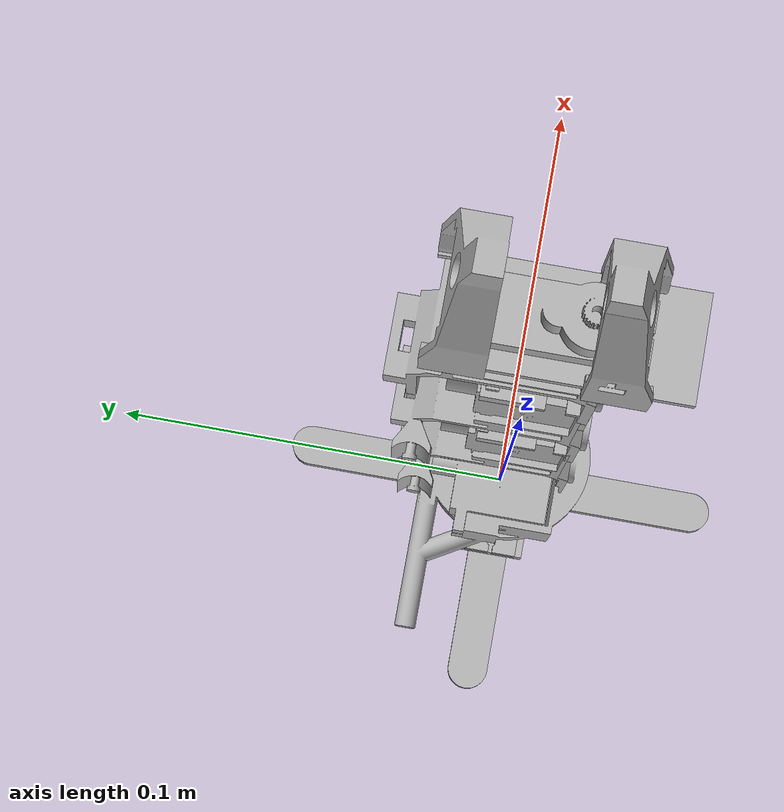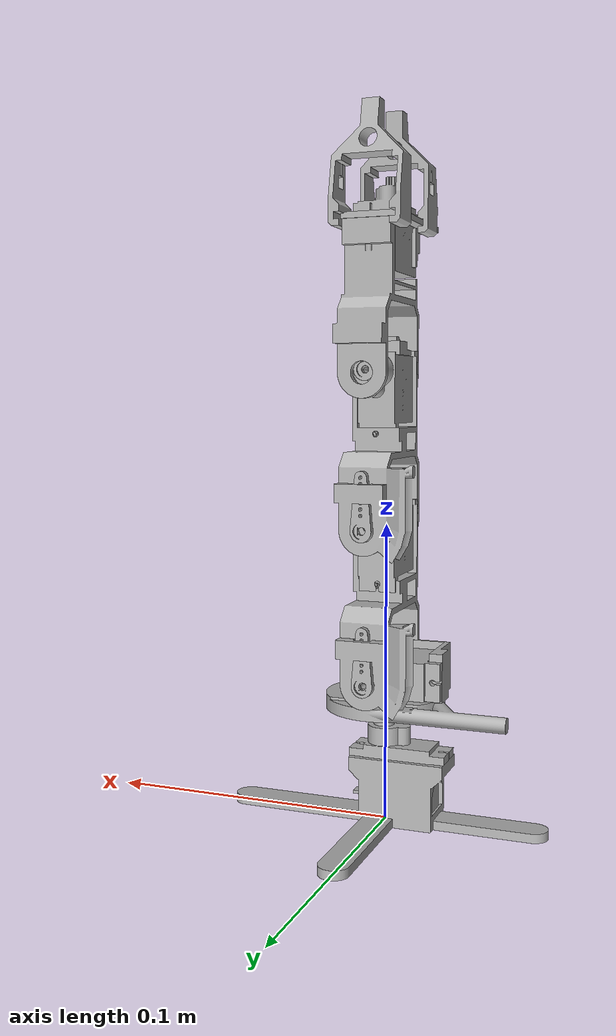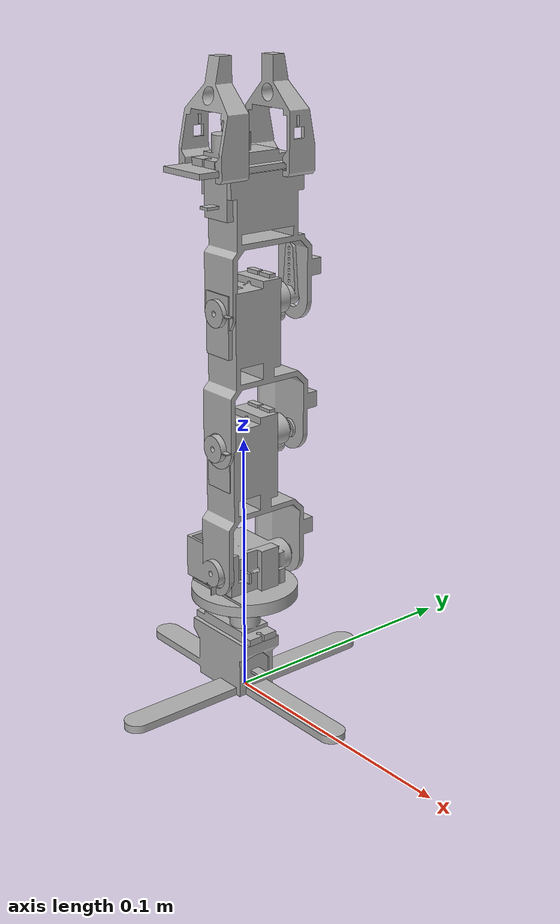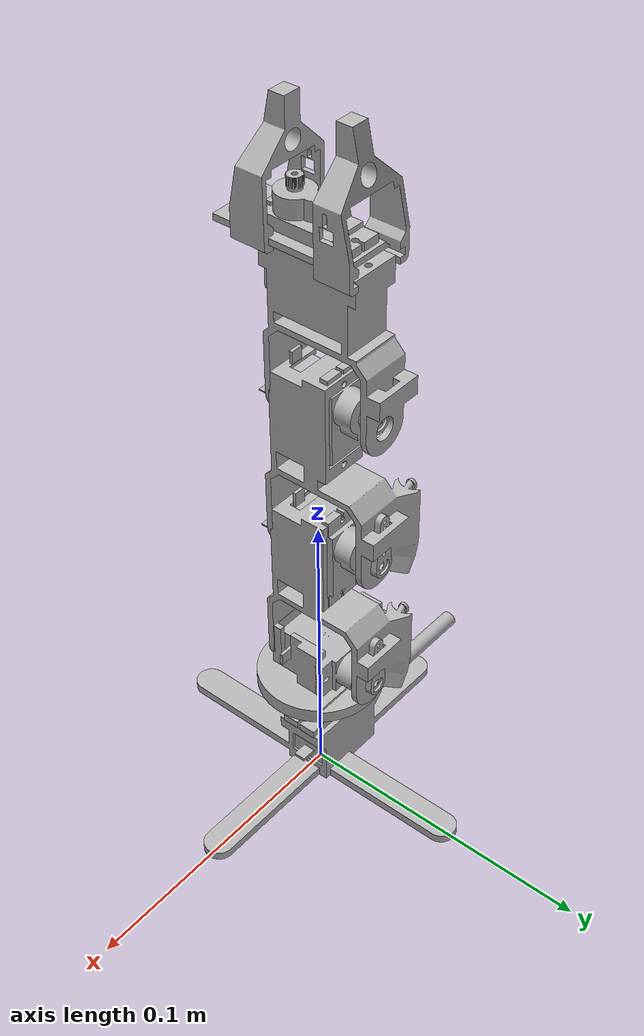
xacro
<?xml version="1.0" ?>
<robot name="Arm_assembly" xmlns:xacro="http://www.ros.org/wiki/xacro">

<xacro:include filename="$(find Arm_assembly_description)/urdf/materials.xacro" />
<xacro:include filename="$(find Arm_assembly_description)/urdf/Arm_assembly.trans" />
<xacro:include filename="$(find Arm_assembly_description)/urdf/Arm_assembly.gazebo" />
<link name="base_link">
  <inertial>
    <origin xyz="-0.001790888956705833 5.198855970783829e-16 0.005081280353570841" rpy="0 0 0"/>
    <mass value="0.06973734855496082"/>
    <inertia ixx="2.9e-05" iyy="3e-05" izz="5.3e-05" ixy="-0.0" iyz="0.0" ixz="1e-06"/>
  </inertial>
  <visual>
    <origin xyz="0 0 0" rpy="0 0 0"/>
    <geometry>
      <mesh filename="file://$(find Arm_assembly_description)/meshes/base_link.stl" scale="0.001 0.001 0.001"/>
    </geometry>
    <material name="silver"/>
  </visual>
  <collision>
    <origin xyz="0 0 0" rpy="0 0 0"/>
    <geometry>
      <mesh filename="file://$(find Arm_assembly_description)/meshes/base_link.stl" scale="0.001 0.001 0.001"/>
    </geometry>
  </collision>
</link>

<link name="base_servo_1">
  <inertial>
    <origin xyz="0.0005325333942827297 1.0134938784049858e-09 0.013073098013751137" rpy="0 0 0"/>
    <mass value="0.058927222786581274"/>
    <inertia ixx="4e-06" iyy="6e-06" izz="4e-06" ixy="0.0" iyz="0.0" ixz="-0.0"/>
  </inertial>
  <visual>
    <origin xyz="0.005 -0.0 -0.003" rpy="0 0 0"/>
    <geometry>
      <mesh filename="file://$(find Arm_assembly_description)/meshes/base_servo_1.stl" scale="0.001 0.001 0.001"/>
    </geometry>
    <material name="silver"/>
  </visual>
  <collision>
    <origin xyz="0.005 -0.0 -0.003" rpy="0 0 0"/>
    <geometry>
      <mesh filename="file://$(find Arm_assembly_description)/meshes/base_servo_1.stl" scale="0.001 0.001 0.001"/>
    </geometry>
  </collision>
</link>

<link name="base_servo_arm_1">
  <inertial>
    <origin xyz="-0.005370321565967373 -1.2826019699753999e-19 0.0003436233249314788" rpy="0 0 0"/>
    <mass value="0.0021102335304111334"/>
    <inertia ixx="0.0" iyy="0.0" izz="0.0" ixy="0.0" iyz="0.0" ixz="0.0"/>
  </inertial>
  <visual>
    <origin xyz="-0.0006 0.0 -0.0355" rpy="0 0 0"/>
    <geometry>
      <mesh filename="file://$(find Arm_assembly_description)/meshes/base_servo_arm_1.stl" scale="0.001 0.001 0.001"/>
    </geometry>
    <material name="silver"/>
  </visual>
  <collision>
    <origin xyz="-0.0006 0.0 -0.0355" rpy="0 0 0"/>
    <geometry>
      <mesh filename="file://$(find Arm_assembly_description)/meshes/base_servo_arm_1.stl" scale="0.001 0.001 0.001"/>
    </geometry>
  </collision>
</link>

<link name="shoulder_link_1">
  <inertial>
    <origin xyz="-0.00412903909068397 0.00047776752185587967 0.005115994825837619" rpy="0 0 0"/>
    <mass value="0.07735657442485215"/>
    <inertia ixx="1e-05" iyy="1.5e-05" izz="2e-05" ixy="3e-06" iyz="1e-06" ixz="0.0"/>
  </inertial>
  <visual>
    <origin xyz="-0.0006 0.0 -0.0375" rpy="0 0 0"/>
    <geometry>
      <mesh filename="file://$(find Arm_assembly_description)/meshes/shoulder_link_1.stl" scale="0.001 0.001 0.001"/>
    </geometry>
    <material name="silver"/>
  </visual>
  <collision>
    <origin xyz="-0.0006 0.0 -0.0375" rpy="0 0 0"/>
    <geometry>
      <mesh filename="file://$(find Arm_assembly_description)/meshes/shoulder_link_1.stl" scale="0.001 0.001 0.001"/>
    </geometry>
  </collision>
</link>

<link name="shoulder_servo_1">
  <inertial>
    <origin xyz="-0.013367737946485261 -0.005326901986248829 2.0203652503075764e-07" rpy="0 0 0"/>
    <mass value="0.058927222786581274"/>
    <inertia ixx="4e-06" iyy="4e-06" izz="6e-06" ixy="-0.0" iyz="-0.0" ixz="-0.0"/>
  </inertial>
  <visual>
    <origin xyz="-0.008842 -0.0077 -0.0504" rpy="0 0 0"/>
    <geometry>
      <mesh filename="file://$(find Arm_assembly_description)/meshes/shoulder_servo_1.stl" scale="0.001 0.001 0.001"/>
    </geometry>
    <material name="silver"/>
  </visual>
  <collision>
    <origin xyz="-0.008842 -0.0077 -0.0504" rpy="0 0 0"/>
    <geometry>
      <mesh filename="file://$(find Arm_assembly_description)/meshes/shoulder_servo_1.stl" scale="0.001 0.001 0.001"/>
    </geometry>
  </collision>
</link>

<link name="shoulder_servo_arm_1">
  <inertial>
    <origin xyz="-2.7134076790850427e-07 0.00034362332493148573 0.005370524615986326" rpy="0 0 0"/>
    <mass value="0.0021102335304111334"/>
    <inertia ixx="0.0" iyy="0.0" izz="0.0" ixy="-0.0" iyz="-0.0" ixz="-0.0"/>
  </inertial>
  <visual>
    <origin xyz="-0.000542 -0.0218 -0.0504" rpy="0 0 0"/>
    <geometry>
      <mesh filename="file://$(find Arm_assembly_description)/meshes/shoulder_servo_arm_1.stl" scale="0.001 0.001 0.001"/>
    </geometry>
    <material name="silver"/>
  </visual>
  <collision>
    <origin xyz="-0.000542 -0.0218 -0.0504" rpy="0 0 0"/>
    <geometry>
      <mesh filename="file://$(find Arm_assembly_description)/meshes/shoulder_servo_arm_1.stl" scale="0.001 0.001 0.001"/>
    </geometry>
  </collision>
</link>

<link name="elbow_link_1">
  <inertial>
    <origin xyz="-0.00048514956089843435 -0.01768411874308059 0.026853686221967182" rpy="0 0 0"/>
    <mass value="0.05763992635022461"/>
    <inertia ixx="2.8e-05" iyy="2.1e-05" izz="1.2e-05" ixy="1e-06" iyz="6e-06" ixz="-2e-06"/>
  </inertial>
  <visual>
    <origin xyz="-0.000542 -0.0218 -0.0504" rpy="0 0 0"/>
    <geometry>
      <mesh filename="file://$(find Arm_assembly_description)/meshes/elbow_link_1.stl" scale="0.001 0.001 0.001"/>
    </geometry>
    <material name="silver"/>
  </visual>
  <collision>
    <origin xyz="-0.000542 -0.0218 -0.0504" rpy="0 0 0"/>
    <geometry>
      <mesh filename="file://$(find Arm_assembly_description)/meshes/elbow_link_1.stl" scale="0.001 0.001 0.001"/>
    </geometry>
  </collision>
</link>

<link name="elbow_servo_1">
  <inertial>
    <origin xyz="-2.703272740334174e-07 -0.005326901986248858 0.014432736444301736" rpy="0 0 0"/>
    <mass value="0.058927222786581274"/>
    <inertia ixx="6e-06" iyy="4e-06" izz="4e-06" ixy="0.0" iyz="-0.0" ixz="0.0"/>
  </inertial>
  <visual>
    <origin xyz="-0.000542 -0.009 -0.08065" rpy="0 0 0"/>
    <geometry>
      <mesh filename="file://$(find Arm_assembly_description)/meshes/elbow_servo_1.stl" scale="0.001 0.001 0.001"/>
    </geometry>
    <material name="silver"/>
  </visual>
  <collision>
    <origin xyz="-0.000542 -0.009 -0.08065" rpy="0 0 0"/>
    <geometry>
      <mesh filename="file://$(find Arm_assembly_description)/meshes/elbow_servo_1.stl" scale="0.001 0.001 0.001"/>
    </geometry>
  </collision>
</link>

<link name="elbow_servo_arm_1">
  <inertial>
    <origin xyz="-2.7134076790948005e-07 0.000343623324931399 0.0053705246159864994" rpy="0 0 0"/>
    <mass value="0.0021102335304111334"/>
    <inertia ixx="0.0" iyy="0.0" izz="0.0" ixy="0.0" iyz="-0.0" ixz="0.0"/>
  </inertial>
  <visual>
    <origin xyz="-0.000542 -0.0231 -0.10015" rpy="0 0 0"/>
    <geometry>
      <mesh filename="file://$(find Arm_assembly_description)/meshes/elbow_servo_arm_1.stl" scale="0.001 0.001 0.001"/>
    </geometry>
    <material name="silver"/>
  </visual>
  <collision>
    <origin xyz="-0.000542 -0.0231 -0.10015" rpy="0 0 0"/>
    <geometry>
      <mesh filename="file://$(find Arm_assembly_description)/meshes/elbow_servo_arm_1.stl" scale="0.001 0.001 0.001"/>
    </geometry>
  </collision>
</link>

<link name="wrist_link_1">
  <inertial>
    <origin xyz="-0.00048524840858917695 -0.017684300359948266 0.026853838982131242" rpy="0 0 0"/>
    <mass value="0.05762817822028318"/>
    <inertia ixx="2.8e-05" iyy="2.1e-05" izz="1.2e-05" ixy="1e-06" iyz="6e-06" ixz="-2e-06"/>
  </inertial>
  <visual>
    <origin xyz="-0.000542 -0.0231 -0.10015" rpy="0 0 0"/>
    <geometry>
      <mesh filename="file://$(find Arm_assembly_description)/meshes/wrist_link_1.stl" scale="0.001 0.001 0.001"/>
    </geometry>
    <material name="silver"/>
  </visual>
  <collision>
    <origin xyz="-0.000542 -0.0231 -0.10015" rpy="0 0 0"/>
    <geometry>
      <mesh filename="file://$(find Arm_assembly_description)/meshes/wrist_link_1.stl" scale="0.001 0.001 0.001"/>
    </geometry>
  </collision>
</link>

<link name="wrist_servo_1">
  <inertial>
    <origin xyz="-2.703272740389468e-07 -0.0053269019862489326 0.01443273644430193" rpy="0 0 0"/>
    <mass value="0.058927222786581274"/>
    <inertia ixx="6e-06" iyy="4e-06" izz="4e-06" ixy="0.0" iyz="-0.0" ixz="0.0"/>
  </inertial>
  <visual>
    <origin xyz="-0.000542 -0.0103 -0.1304" rpy="0 0 0"/>
    <geometry>
      <mesh filename="file://$(find Arm_assembly_description)/meshes/wrist_servo_1.stl" scale="0.001 0.001 0.001"/>
    </geometry>
    <material name="silver"/>
  </visual>
  <collision>
    <origin xyz="-0.000542 -0.0103 -0.1304" rpy="0 0 0"/>
    <geometry>
      <mesh filename="file://$(find Arm_assembly_description)/meshes/wrist_servo_1.stl" scale="0.001 0.001 0.001"/>
    </geometry>
  </collision>
</link>

<link name="wrist_servo_arm_1">
  <inertial>
    <origin xyz="-2.713407679134916e-07 0.00034362332493137124 0.0053705246159866105" rpy="0 0 0"/>
    <mass value="0.0021102335304111334"/>
    <inertia ixx="0.0" iyy="0.0" izz="0.0" ixy="0.0" iyz="-0.0" ixz="0.0"/>
  </inertial>
  <visual>
    <origin xyz="-0.000542 -0.0244 -0.1499" rpy="0 0 0"/>
    <geometry>
      <mesh filename="file://$(find Arm_assembly_description)/meshes/wrist_servo_arm_1.stl" scale="0.001 0.001 0.001"/>
    </geometry>
    <material name="silver"/>
  </visual>
  <collision>
    <origin xyz="-0.000542 -0.0244 -0.1499" rpy="0 0 0"/>
    <geometry>
      <mesh filename="file://$(find Arm_assembly_description)/meshes/wrist_servo_arm_1.stl" scale="0.001 0.001 0.001"/>
    </geometry>
  </collision>
</link>

<link name="gripper_link_1">
  <inertial>
    <origin xyz="0.0009456753705498636 -0.017464596768771802 0.026146853594469083" rpy="0 0 0"/>
    <mass value="0.04710959091756904"/>
    <inertia ixx="1.8e-05" iyy="1e-05" izz="1e-05" ixy="0.0" iyz="2e-06" ixz="-1e-06"/>
  </inertial>
  <visual>
    <origin xyz="-0.000542 -0.0244 -0.1499" rpy="0 0 0"/>
    <geometry>
      <mesh filename="file://$(find Arm_assembly_description)/meshes/gripper_link_1.stl" scale="0.001 0.001 0.001"/>
    </geometry>
    <material name="silver"/>
  </visual>
  <collision>
    <origin xyz="-0.000542 -0.0244 -0.1499" rpy="0 0 0"/>
    <geometry>
      <mesh filename="file://$(find Arm_assembly_description)/meshes/gripper_link_1.stl" scale="0.001 0.001 0.001"/>
    </geometry>
  </collision>
</link>

<link name="gripper_plate_1">
  <inertial>
    <origin xyz="-2.6837112507671298e-05 -0.01993063764803694 0.0010002030500191883" rpy="0 0 0"/>
    <mass value="0.008749548188196699"/>
    <inertia ixx="2e-06" iyy="0.0" izz="2e-06" ixy="0.0" iyz="0.0" ixz="0.0"/>
  </inertial>
  <visual>
    <origin xyz="-0.000542 -0.01815 -0.1981" rpy="0 0 0"/>
    <geometry>
      <mesh filename="file://$(find Arm_assembly_description)/meshes/gripper_plate_1.stl" scale="0.001 0.001 0.001"/>
    </geometry>
    <material name="silver"/>
  </visual>
  <collision>
    <origin xyz="-0.000542 -0.01815 -0.1981" rpy="0 0 0"/>
    <geometry>
      <mesh filename="file://$(find Arm_assembly_description)/meshes/gripper_plate_1.stl" scale="0.001 0.001 0.001"/>
    </geometry>
  </collision>
</link>

<link name="gripper_servo_1">
  <inertial>
    <origin xyz="-2.7032727404827095e-07 -0.01443253339428278 -0.00532669893622964" rpy="0 0 0"/>
    <mass value="0.058927222786581274"/>
    <inertia ixx="6e-06" iyy="4e-06" izz="4e-06" ixy="-0.0" iyz="0.0" ixz="0.0"/>
  </inertial>
  <visual>
    <origin xyz="-0.000542 -0.01815 -0.2001" rpy="0 0 0"/>
    <geometry>
      <mesh filename="file://$(find Arm_assembly_description)/meshes/gripper_servo_1.stl" scale="0.001 0.001 0.001"/>
    </geometry>
    <material name="silver"/>
  </visual>
  <collision>
    <origin xyz="-0.000542 -0.01815 -0.2001" rpy="0 0 0"/>
    <geometry>
      <mesh filename="file://$(find Arm_assembly_description)/meshes/gripper_servo_1.stl" scale="0.001 0.001 0.001"/>
    </geometry>
  </collision>
</link>

<link name="gripper_finger1_1">
  <inertial>
    <origin xyz="0.010354168692533352 0.006934834172725701 0.01620783151280153" rpy="0 0 0"/>
    <mass value="0.016152151659152816"/>
    <inertia ixx="2e-06" iyy="3e-06" izz="1e-06" ixy="-0.0" iyz="-0.0" ixz="0.0"/>
  </inertial>
  <visual>
    <origin xyz="0.009458 0.0211 -0.1991" rpy="0 0 0"/>
    <geometry>
      <mesh filename="file://$(find Arm_assembly_description)/meshes/gripper_finger1_1.stl" scale="0.001 0.001 0.001"/>
    </geometry>
    <material name="silver"/>
  </visual>
  <collision>
    <origin xyz="0.009458 0.0211 -0.1991" rpy="0 0 0"/>
    <geometry>
      <mesh filename="file://$(find Arm_assembly_description)/meshes/gripper_finger1_1.stl" scale="0.001 0.001 0.001"/>
    </geometry>
  </collision>
</link>

<link name="gripper_finger2_1">
  <inertial>
    <origin xyz="0.010045288625930803 -0.00693483417272589 0.01620783151280139" rpy="0 0 0"/>
    <mass value="0.016152151659152816"/>
    <inertia ixx="2e-06" iyy="3e-06" izz="1e-06" ixy="-0.0" iyz="0.0" ixz="-0.0"/>
  </inertial>
  <visual>
    <origin xyz="0.009458 -0.0219 -0.1991" rpy="0 0 0"/>
    <geometry>
      <mesh filename="file://$(find Arm_assembly_description)/meshes/gripper_finger2_1.stl" scale="0.001 0.001 0.001"/>
    </geometry>
    <material name="silver"/>
  </visual>
  <collision>
    <origin xyz="0.009458 -0.0219 -0.1991" rpy="0 0 0"/>
    <geometry>
      <mesh filename="file://$(find Arm_assembly_description)/meshes/gripper_finger2_1.stl" scale="0.001 0.001 0.001"/>
    </geometry>
  </collision>
</link>

<joint name="Starr 20" type="fixed">
  <origin xyz="-0.005 0.0 0.003" rpy="0 0 0"/>
  <parent link="base_link"/>
  <child link="base_servo_1"/>
</joint>

<joint name="Umdrehung 21" type="continuous">
  <origin xyz="0.0056 -0.0 0.0325" rpy="0 0 0"/>
  <parent link="base_servo_1"/>
  <child link="base_servo_arm_1"/>
  <axis xyz="0.0 0.0 -1.0"/>
</joint>

<joint name="Starr 22" type="fixed">
  <origin xyz="0.0 0.0 0.002" rpy="0 0 0"/>
  <parent link="base_servo_arm_1"/>
  <child link="shoulder_link_1"/>
</joint>

<joint name="Starr 23" type="fixed">
  <origin xyz="0.008242 0.0077 0.0129" rpy="0 0 0"/>
  <parent link="shoulder_link_1"/>
  <child link="shoulder_servo_1"/>
</joint>

<joint name="Umdrehung 24" type="continuous">
  <origin xyz="-0.0083 0.0141 0.0" rpy="0 0 0"/>
  <parent link="shoulder_servo_1"/>
  <child link="shoulder_servo_arm_1"/>
  <axis xyz="0.0 1.0 0.0"/>
</joint>

<joint name="Starr 25" type="fixed">
  <origin xyz="0.0 0.0 0.0" rpy="0 0 0"/>
  <parent link="shoulder_servo_arm_1"/>
  <child link="elbow_link_1"/>
</joint>

<joint name="Starr 26" type="fixed">
  <origin xyz="0.0 -0.0128 0.03025" rpy="0 0 0"/>
  <parent link="elbow_link_1"/>
  <child link="elbow_servo_1"/>
</joint>

<joint name="Umdrehung 27" type="continuous">
  <origin xyz="0.0 0.0141 0.0195" rpy="0 0 0"/>
  <parent link="elbow_servo_1"/>
  <child link="elbow_servo_arm_1"/>
  <axis xyz="0.0 1.0 0.0"/>
</joint>

<joint name="Starr 28" type="fixed">
  <origin xyz="0.0 0.0 0.0" rpy="0 0 0"/>
  <parent link="elbow_servo_arm_1"/>
  <child link="wrist_link_1"/>
</joint>

<joint name="Starr 29" type="fixed">
  <origin xyz="0.0 -0.0128 0.03025" rpy="0 0 0"/>
  <parent link="wrist_link_1"/>
  <child link="wrist_servo_1"/>
</joint>

<joint name="Umdrehung 30" type="continuous">
  <origin xyz="0.0 0.0141 0.0195" rpy="0 0 0"/>
  <parent link="wrist_servo_1"/>
  <child link="wrist_servo_arm_1"/>
  <axis xyz="-0.0 -1.0 -0.0"/>
</joint>

<joint name="Starr 31" type="fixed">
  <origin xyz="0.0 0.0 0.0" rpy="0 0 0"/>
  <parent link="wrist_servo_arm_1"/>
  <child link="gripper_link_1"/>
</joint>

<joint name="Starr 32" type="fixed">
  <origin xyz="0.0 -0.00625 0.0482" rpy="0 0 0"/>
  <parent link="gripper_link_1"/>
  <child link="gripper_plate_1"/>
</joint>

<joint name="Starr 33" type="fixed">
  <origin xyz="0.0 0.0 0.002" rpy="0 0 0"/>
  <parent link="gripper_plate_1"/>
  <child link="gripper_servo_1"/>
</joint>

<joint name="Schieberegler 34" type="prismatic">
  <origin xyz="-0.01 -0.03925 0.001" rpy="0 0 0"/>
  <parent link="gripper_plate_1"/>
  <child link="gripper_finger1_1"/>
  <axis xyz="0.0 1.0 0.0"/>
  <limit upper="0.0" lower="0.0" effort="100" velocity="100"/>
</joint>

<joint name="Schieberegler 35" type="prismatic">
  <origin xyz="-0.01 0.00375 0.001" rpy="0 0 0"/>
  <parent link="gripper_plate_1"/>
  <child link="gripper_finger2_1"/>
  <axis xyz="0.0 1.0 0.0"/>
  <limit upper="0.0" lower="0.0" effort="100" velocity="100"/>
</joint>

</robot>

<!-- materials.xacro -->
<robot name="Arm_assembly" xmlns:xacro="http://www.ros.org/wiki/xacro" >

<material name="silver">
  <color rgba="0.700 0.700 0.700 1.000"/>
</material>

</robot>

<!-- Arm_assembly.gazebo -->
<robot name="Arm_assembly" xmlns:xacro="http://www.ros.org/wiki/xacro" >

<xacro:property name="body_color" value="Gazebo/Silver" />

<gazebo>
  <plugin name="control" filename="libgazebo_ros_control.so"/>
</gazebo>
<gazebo reference="base_link">
  <material>${body_color}</material>
  <mu1>0.2</mu1>
  <mu2>0.2</mu2>
  <self_collide>true</self_collide>
  <gravity>true</gravity>
</gazebo>

<gazebo reference="base_servo_1">
  <material>${body_color}</material>
  <mu1>0.2</mu1>
  <mu2>0.2</mu2>
  <self_collide>true</self_collide>
</gazebo>

<gazebo reference="base_servo_arm_1">
  <material>${body_color}</material>
  <mu1>0.2</mu1>
  <mu2>0.2</mu2>
  <self_collide>true</self_collide>
</gazebo>

<gazebo reference="shoulder_link_1">
  <material>${body_color}</material>
  <mu1>0.2</mu1>
  <mu2>0.2</mu2>
  <self_collide>true</self_collide>
</gazebo>

<gazebo reference="shoulder_servo_1">
  <material>${body_color}</material>
  <mu1>0.2</mu1>
  <mu2>0.2</mu2>
  <self_collide>true</self_collide>
</gazebo>

<gazebo reference="shoulder_servo_arm_1">
  <material>${body_color}</material>
  <mu1>0.2</mu1>
  <mu2>0.2</mu2>
  <self_collide>true</self_collide>
</gazebo>

<gazebo reference="elbow_link_1">
  <material>${body_color}</material>
  <mu1>0.2</mu1>
  <mu2>0.2</mu2>
  <self_collide>true</self_collide>
</gazebo>

<gazebo reference="elbow_servo_1">
  <material>${body_color}</material>
  <mu1>0.2</mu1>
  <mu2>0.2</mu2>
  <self_collide>true</self_collide>
</gazebo>

<gazebo reference="elbow_servo_arm_1">
  <material>${body_color}</material>
  <mu1>0.2</mu1>
  <mu2>0.2</mu2>
  <self_collide>true</self_collide>
</gazebo>

<gazebo reference="wrist_link_1">
  <material>${body_color}</material>
  <mu1>0.2</mu1>
  <mu2>0.2</mu2>
  <self_collide>true</self_collide>
</gazebo>

<gazebo reference="wrist_servo_1">
  <material>${body_color}</material>
  <mu1>0.2</mu1>
  <mu2>0.2</mu2>
  <self_collide>true</self_collide>
</gazebo>

<gazebo reference="wrist_servo_arm_1">
  <material>${body_color}</material>
  <mu1>0.2</mu1>
  <mu2>0.2</mu2>
  <self_collide>true</self_collide>
</gazebo>

<gazebo reference="gripper_link_1">
  <material>${body_color}</material>
  <mu1>0.2</mu1>
  <mu2>0.2</mu2>
  <self_collide>true</self_collide>
</gazebo>

<gazebo reference="gripper_plate_1">
  <material>${body_color}</material>
  <mu1>0.2</mu1>
  <mu2>0.2</mu2>
  <self_collide>true</self_collide>
</gazebo>

<gazebo reference="gripper_servo_1">
  <material>${body_color}</material>
  <mu1>0.2</mu1>
  <mu2>0.2</mu2>
  <self_collide>true</self_collide>
</gazebo>

<gazebo reference="gripper_finger1_1">
  <material>${body_color}</material>
  <mu1>0.2</mu1>
  <mu2>0.2</mu2>
  <self_collide>true</self_collide>
</gazebo>

<gazebo reference="gripper_finger2_1">
  <material>${body_color}</material>
  <mu1>0.2</mu1>
  <mu2>0.2</mu2>
  <self_collide>true</self_collide>
</gazebo>

</robot>
